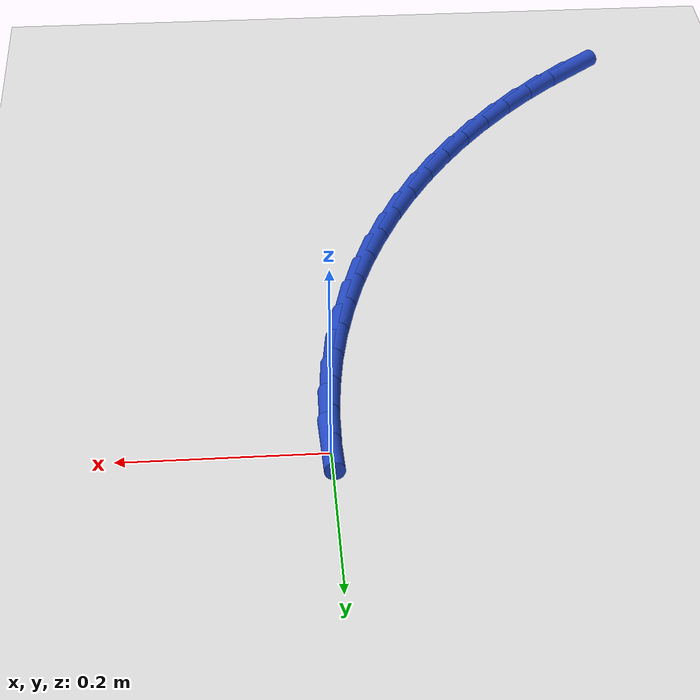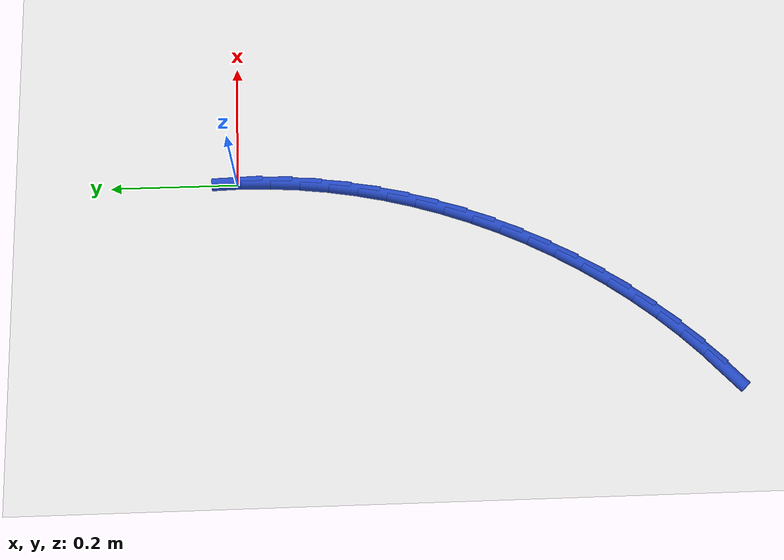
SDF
<sdf version="1.6">
 <world name="default">
  <model name="ground_plane">
   <static>1</static>
   <link name="link">
    <collision name="collision">
     <geometry><plane><normal>0 0 1</normal><size>100 100</size></plane></geometry>
     <surface><friction><ode><mu>100</mu><mu2>50</mu2></ode></friction></surface>
    </collision>
    <visual name="visual">
     <cast_shadows>0</cast_shadows>
     <geometry><plane><normal>0 0 1</normal><size>100 100</size></plane></geometry>
     <material>
      <script><uri>file://media/materials/scripts/gazebo.material</uri><name>Gazebo/WhiteGlow</name></script>
     </material>
    </visual>
   </link>
  </model>
  <model name="line">
   <link name="link_0">
    <pose>-3.122502256758253e-17 1.3877787807814457e-17 0.01 0 1.57 -1.5429689902392099</pose>
    <collision name="collision">
     <geometry><cylinder><radius>0.01</radius><length>0.08</length></cylinder></geometry>
    </collision>
    <visual name="visual">
     <material>
      <script><name>Gazebo/Blue</name><uri>file://media/materials/scripts/gazebo.material</uri></script>
     </material>
     <geometry><cylinder><radius>0.01</radius><length>0.08</length></cylinder></geometry>
    </visual>
   </link>
   <link name="link_132">
    <pose>-0.32926668627510824 -0.7417461467622062 0.01 0 1.57 0.7458186609219924</pose>
    <collision name="collision">
     <geometry><cylinder><radius>0.01</radius><length>0.08</length></cylinder></geometry>
    </collision>
    <visual name="visual">
     <material>
      <script><name>Gazebo/Blue</name><uri>file://media/materials/scripts/gazebo.material</uri></script>
     </material>
     <geometry><cylinder><radius>0.01</radius><length>0.08</length></cylinder></geometry>
    </visual>
   </link>
   <link name="link_133">
    <pose>-0.2957088013942939 -0.7107448185360253 0.01 0 1.57 0.7984575867225525</pose>
    <collision name="collision">
     <geometry><cylinder><radius>0.01</radius><length>0.08</length></cylinder></geometry>
    </collision>
    <visual name="visual">
     <material>
      <script><name>Gazebo/Blue</name><uri>file://media/materials/scripts/gazebo.material</uri></script>
     </material>
     <geometry><cylinder><radius>0.01</radius><length>0.08</length></cylinder></geometry>
    </visual>
   </link>
   <link name="link_134">
    <pose>-0.26363366262271787 -0.677820779728559 0.01 0 1.57 0.8492850463639514</pose>
    <collision name="collision">
     <geometry><cylinder><radius>0.01</radius><length>0.08</length></cylinder></geometry>
    </collision>
    <visual name="visual">
     <material>
      <script><name>Gazebo/Blue</name><uri>file://media/materials/scripts/gazebo.material</uri></script>
     </material>
     <geometry><cylinder><radius>0.01</radius><length>0.08</length></cylinder></geometry>
    </visual>
   </link>
   <link name="link_135">
    <pose>-0.23310540920574602 -0.6431195382633772 0.01 0 1.57 0.8985630028117666</pose>
    <collision name="collision">
     <geometry><cylinder><radius>0.01</radius><length>0.08</length></cylinder></geometry>
    </collision>
    <visual name="visual">
     <material>
      <script><name>Gazebo/Blue</name><uri>file://media/materials/scripts/gazebo.material</uri></script>
     </material>
     <geometry><cylinder><radius>0.01</radius><length>0.08</length></cylinder></geometry>
    </visual>
   </link>
   <link name="link_136">
    <pose>-0.20418818038874303 -0.6067866020640483 0.01 0 1.57 0.9465591753623254</pose>
    <collision name="collision">
     <geometry><cylinder><radius>0.01</radius><length>0.08</length></cylinder></geometry>
    </collision>
    <visual name="visual">
     <material>
      <script><name>Gazebo/Blue</name><uri>file://media/materials/scripts/gazebo.material</uri></script>
     </material>
     <geometry><cylinder><radius>0.01</radius><length>0.08</length></cylinder></geometry>
    </visual>
   </link>
   <link name="link_137">
    <pose>-0.176946115417075 -0.5689674790541427 0.01 0 1.57 0.9935439332516245</pose>
    <collision name="collision">
     <geometry><cylinder><radius>0.01</radius><length>0.08</length></cylinder></geometry>
    </collision>
    <visual name="visual">
     <material>
      <script><name>Gazebo/Blue</name><uri>file://media/materials/scripts/gazebo.material</uri></script>
     </material>
     <geometry><cylinder><radius>0.01</radius><length>0.08</length></cylinder></geometry>
    </visual>
   </link>
   <link name="link_138">
    <pose>-0.15144335353610783 -0.5298076771572302 0.01 0 1.57 1.039788701959894</pose>
    <collision name="collision">
     <geometry><cylinder><radius>0.01</radius><length>0.08</length></cylinder></geometry>
    </collision>
    <visual name="visual">
     <material>
      <script><name>Gazebo/Blue</name><uri>file://media/materials/scripts/gazebo.material</uri></script>
     </material>
     <geometry><cylinder><radius>0.01</radius><length>0.08</length></cylinder></geometry>
    </visual>
   </link>
   <link name="link_139">
    <pose>-0.1277440339912064 -0.4894527042968794 0.01 0 1.57 1.0855655041771166</pose>
    <collision name="collision">
     <geometry><cylinder><radius>0.01</radius><length>0.08</length></cylinder></geometry>
    </collision>
    <visual name="visual">
     <material>
      <script><name>Gazebo/Blue</name><uri>file://media/materials/scripts/gazebo.material</uri></script>
     </material>
     <geometry><cylinder><radius>0.01</radius><length>0.08</length></cylinder></geometry>
    </visual>
   </link>
   <link name="link_140">
    <pose>-0.10591229602773698 -0.4480480683966615 0.01 0 1.57 1.1311473084752977</pose>
    <collision name="collision">
     <geometry><cylinder><radius>0.01</radius><length>0.08</length></cylinder></geometry>
    </collision>
    <visual name="visual">
     <material>
      <script><name>Gazebo/Blue</name><uri>file://media/materials/scripts/gazebo.material</uri></script>
     </material>
     <geometry><cylinder><radius>0.01</radius><length>0.08</length></cylinder></geometry>
    </visual>
   </link>
   <link name="link_141">
    <pose>-0.08601227881437416 -0.4057392772365285 0.01 0 1.57 1.1767806253406605</pose>
    <collision name="collision">
     <geometry><cylinder><radius>0.01</radius><length>0.08</length></cylinder></geometry>
    </collision>
    <visual name="visual">
     <material>
      <script><name>Gazebo/Blue</name><uri>file://media/materials/scripts/gazebo.material</uri></script>
     </material>
     <geometry><cylinder><radius>0.01</radius><length>0.08</length></cylinder></geometry>
    </visual>
   </link>
   <link name="link_142">
    <pose>-0.06810167053005615 -0.36265975797427474 0.01 0 1.57 1.2225469088856658</pose>
    <collision name="collision">
     <geometry><cylinder><radius>0.01</radius><length>0.08</length></cylinder></geometry>
    </collision>
    <visual name="visual">
     <material>
      <script><name>Gazebo/Blue</name><uri>file://media/materials/scripts/gazebo.material</uri></script>
     </material>
     <geometry><cylinder><radius>0.01</radius><length>0.08</length></cylinder></geometry>
    </visual>
   </link>
   <link name="link_143">
    <pose>-0.05221410044417704 -0.31889788319349904 0.01 0 1.57 1.2684860485939977</pose>
    <collision name="collision">
     <geometry><cylinder><radius>0.01</radius><length>0.08</length></cylinder></geometry>
    </collision>
    <visual name="visual">
     <material>
      <script><name>Gazebo/Blue</name><uri>file://media/materials/scripts/gazebo.material</uri></script>
     </material>
     <geometry><cylinder><radius>0.01</radius><length>0.08</length></cylinder></geometry>
    </visual>
   </link>
   <link name="link_144">
    <pose>-0.03837759023055409 -0.2745315242607541 0.01 0 1.57 1.3146502473209118</pose>
    <collision name="collision">
     <geometry><cylinder><radius>0.01</radius><length>0.08</length></cylinder></geometry>
    </collision>
    <visual name="visual">
     <material>
      <script><name>Gazebo/Blue</name><uri>file://media/materials/scripts/gazebo.material</uri></script>
     </material>
     <geometry><cylinder><radius>0.01</radius><length>0.08</length></cylinder></geometry>
    </visual>
   </link>
   <link name="link_145">
    <pose>-0.026620161563005614 -0.22963855254259607 0.01 0 1.57 1.361089966699486</pose>
    <collision name="collision">
     <geometry><cylinder><radius>0.01</radius><length>0.08</length></cylinder></geometry>
    </collision>
    <visual name="visual">
     <material>
      <script><name>Gazebo/Blue</name><uri>file://media/materials/scripts/gazebo.material</uri></script>
     </material>
     <geometry><cylinder><radius>0.01</radius><length>0.08</length></cylinder></geometry>
    </visual>
   </link>
   <link name="link_146">
    <pose>-0.01696983611534901 -0.1842968394055777 0.01 0 1.57 1.4078527571399424</pose>
    <collision name="collision">
     <geometry><cylinder><radius>0.01</radius><length>0.08</length></cylinder></geometry>
    </collision>
    <visual name="visual">
     <material>
      <script><name>Gazebo/Blue</name><uri>file://media/materials/scripts/gazebo.material</uri></script>
     </material>
     <geometry><cylinder><radius>0.01</radius><length>0.08</length></cylinder></geometry>
    </visual>
   </link>
   <link name="link_147">
    <pose>-0.009454635561402327 -0.13858425621625428 0.01 0 1.57 1.4549820407326732</pose>
    <collision name="collision">
     <geometry><cylinder><radius>0.01</radius><length>0.08</length></cylinder></geometry>
    </collision>
    <visual name="visual">
     <material>
      <script><name>Gazebo/Blue</name><uri>file://media/materials/scripts/gazebo.material</uri></script>
     </material>
     <geometry><cylinder><radius>0.01</radius><length>0.08</length></cylinder></geometry>
    </visual>
   </link>
   <link name="link_148">
    <pose>-0.0041025815749834715 -0.0925786743411811 0.01 0 1.57 1.502515852069134</pose>
    <collision name="collision">
     <geometry><cylinder><radius>0.01</radius><length>0.08</length></cylinder></geometry>
    </collision>
    <visual name="visual">
     <material>
      <script><name>Gazebo/Blue</name><uri>file://media/materials/scripts/gazebo.material</uri></script>
     </material>
     <geometry><cylinder><radius>0.01</radius><length>0.08</length></cylinder></geometry>
    </visual>
   </link>
   <link name="link_149">
    <pose>-0.0009416958299100506 -0.046357965146910936 0.01 0 1.57 1.550485548884491</pose>
    <collision name="collision">
     <geometry><cylinder><radius>0.01</radius><length>0.08</length></cylinder></geometry>
    </collision>
    <visual name="visual">
     <material>
      <script><name>Gazebo/Blue</name><uri>file://media/materials/scripts/gazebo.material</uri></script>
     </material>
     <geometry><cylinder><radius>0.01</radius><length>0.08</length></cylinder></geometry>
    </visual>
   </link>
  </model>
 </world>
</sdf>
